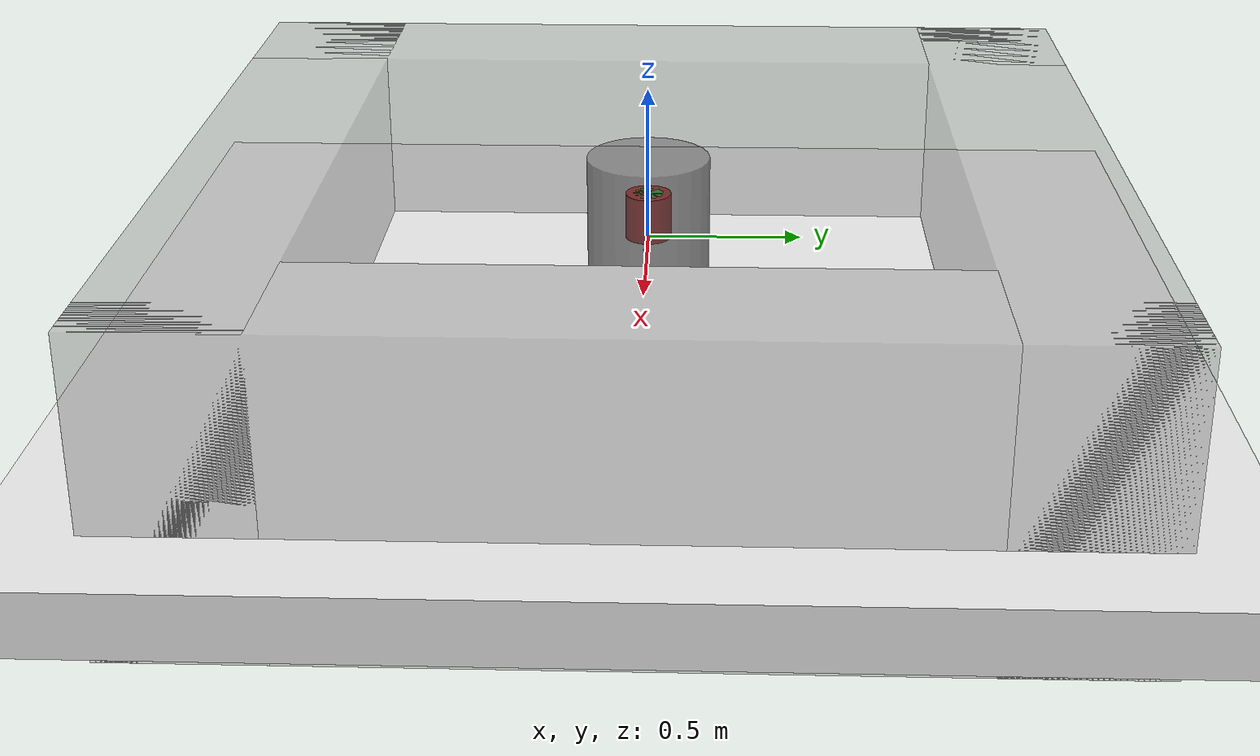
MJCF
<mujoco>
    <option gravity="0 0 0" timestep="0.01"/>
<default>
    <geom rgba="0 0 0 1"/>
</default>
    <worldbody>
    <light diffuse=".2 .2 .2" pos="0 0 1.3" dir="0 0 -1" mode="track"/>
    <light diffuse=".2 .2 .2" pos="1 1 1.3" dir="0 0 -1" mode="track"/>
    <light diffuse=".2 .2 .2" pos="1 -1 1.3" dir="0 0 -1" mode="track"/>
    <light diffuse=".2 .2 .2" pos="-1 1 1.3" dir="0 0 -1" mode="track"/>
    <light diffuse=".2 .2 .2" pos="-1 -1 1.3" dir="0 0 -1" mode="track"/>
    <light diffuse=".2 .2 .2" pos="0 0 20" dir="0 0 -1" mode="track"/>
    <body>
      <geom name='floor' pos='0 0 -0.4' size='10 10 .1' mass="10000" type='box' condim='3' rgba=".9 .9 .9 1" />
    <camera name="center" mode="fixed" pos="0 0 5" />
    <camera name="30" mode="fixed" pos="0 -2.5 5"  axisangle="1 0 0 30"    />
    </body>

    <body name="predator0" pos="0 0 0.075">
            <joint axis="1 0 0" damping="0" frictionloss="0" name="predator00" pos="0 0 0" type="slide"/>
            <joint axis="0 1 0" damping="0" frictionloss="0" name="predator01" pos="0 0 0" type="slide"/>
            <geom type="cylinder" size="0.075 0.075" mass="1" conaffinity="1" solimp="0.9 0.9999 0.001 0.5 1" solref="0.5 0.2" rgba="1 0 0 1"/>
            <site name="predator0" pos="-0.1 0 0.05" type="sphere" size="0.001"/>
    </body>

    <body name="predator1" pos="0 0 0.075">
            <joint axis="1 0 0" damping="0" frictionloss="0" name="predator10" pos="0 0 0" type="slide"/>
            <joint axis="0 1 0" damping="0" frictionloss="0" name="predator11" pos="0 0 0" type="slide"/>
            <geom type="cylinder" size="0.075 0.075" mass="1" conaffinity="1" solimp="0.9 0.9999 0.001 0.5 1" solref="0.5 0.2" rgba="1 0 0 1"/>
            <site name="predator1" pos="-0.1 0 0.05" type="sphere" size="0.001"/>
    </body>

    <body name="predator2" pos="0 0 0.075">
            <joint axis="1 0 0" damping="0" frictionloss="0" name="predator20" pos="0 0 0" type="slide"/>
            <joint axis="0 1 0" damping="0" frictionloss="0" name="predator21" pos="0 0 0" type="slide"/>
            <geom type="cylinder" size="0.075 0.075" mass="1" conaffinity="1" solimp="0.9 0.9999 0.001 0.5 1" solref="0.5 0.2" rgba="1 0 0 1"/>
            <site name="predator2" pos="-0.1 0 0.05" type="sphere" size="0.001"/>
    </body>

    <body name="prey0" pos="0 0 0.075">
            <joint axis="1 0 0" damping="0" frictionloss="0" name="prey00" pos="0 0 0" type="slide"/>
            <joint axis="0 1 0" damping="0" frictionloss="0" name="prey01" pos="0 0 0" type="slide"/>
            <geom type ="cylinder" size="0.05 0.075" mass="1" conaffinity="1" solimp="0.9 0.9999 0.001 0.5 1" solref="0.5 0.2" rgba="0 1 0 1"/>
            <site name="prey0" pos="0.5 0 0.075" type="sphere" size="0.001"/>
    </body>

    <body name="prey1" pos="0 0 0.075">
            <joint axis="1 0 0" damping="0" frictionloss="0" name="prey10" pos="0 0 0" type="slide"/>
            <joint axis="0 1 0" damping="0" frictionloss="0" name="prey11" pos="0 0 0" type="slide"/>
            <geom type ="cylinder" size="0.05 0.075" mass="1" conaffinity="1" solimp="0.9 0.9999 0.001 0.5 1" solref="0.5 0.2" rgba="0 1 0 1"/>
            <site name="prey1" pos="0.5 0 0.075" type="sphere" size="0.001"/>
    </body>
    <body name="prey2" pos="0 0 0.075">
            <joint axis="1 0 0" damping="0" frictionloss="0" name="prey20" pos="0 0 0" type="slide"/>
            <joint axis="0 1 0" damping="0" frictionloss="0" name="prey21" pos="0 0 0" type="slide"/>
            <geom type ="cylinder" size="0.05 0.075" mass="1" conaffinity="1" solimp="0.9 0.9999 0.001 0.5 1" solref="0.5 0.2" rgba="0 1 0 1"/>
            <site name="prey2" pos="0.5 0 0.075" type="sphere" size="0.001"/>
    </body>

    <body name="prey3" pos="0 0 0.075">
            <joint axis="1 0 0" damping="0" frictionloss="0" name="prey30" pos="0 0 0" type="slide"/>
            <joint axis="0 1 0" damping="0" frictionloss="0" name="prey31" pos="0 0 0" type="slide"/>
            <geom type ="cylinder" size="0.05 0.075" mass="1" conaffinity="1" solimp="0.9 0.9999 0.001 0.5 1" solref="0.5 0.2" rgba="0 1 0 1"/>
            <site name="prey3" pos="0.5 0 0.075" type="sphere" size="0.001"/>
    </body>

    <body name="block0" pos="0 0 0.075">
            <geom type="cylinder" size="0.2 0.2" mass="1" conaffinity="1" solimp="0.9 0.9999 0.001 0.5 1" solref="0.5 0.2" rgba="0.4 0.4 0.4 0.7" condim='3'/>

    </body>
    <body name="block1" pos="0 0 0.075">
        <geom type="cylinder" size="0.2 0.2" mass="1" conaffinity="1" solimp="0.9 0.9999 0.001 0.5 1" solref="0.5 0.2" rgba="0.4 0.4 0.4 0.7" condim='3'/>

    </body>

    <body>
      <geom name='wall1' pos='-1.25 0 -0.2' size='.25 1.5 0.5' mass="10000" type='box' rgba="0.4 0.4 0.4 0.3" condim='3'/>
    </body>
    <body>
      <geom name='wall2' pos='1.25 0 -0.2' size='.25 1.5 0.5' mass="10000" type='box' rgba="0.4 0.4 0.4 0.3" condim='3'/>
    </body>
    <body>
      <geom name='wall3' pos='0 -1.25 -0.2' size='1.5 .25 0.5' mass="10000" type='box' rgba="0.4 0.4 0.4 0.3" condim='3'/>
    </body>
    <body>
      <geom name='wall4' pos='0 1.25 -0.2' size='1.5 .25 0.5' mass="10000" type='box' rgba="0.4 0.4 0.4 0.3" condim='3'/>
    </body>

    </worldbody>

    <actuator>
        <motor gear="1" joint="predator00"/>
        <motor gear="1" joint="predator01"/>
        <motor gear="1" joint="predator10"/>
        <motor gear="1" joint="predator11"/>
        <motor gear="1" joint="predator20"/>
        <motor gear="1" joint="predator21"/>
        <motor gear="1" joint="prey00" />
        <motor gear="1" joint="prey01" />
        <motor gear="1" joint="prey10" />
        <motor gear="1" joint="prey11" />
        <motor gear="1" joint="prey20" />
        <motor gear="1" joint="prey21" />
        <motor gear="1" joint="prey30" />
        <motor gear="1" joint="prey31" />
    </actuator>
</mujoco>
